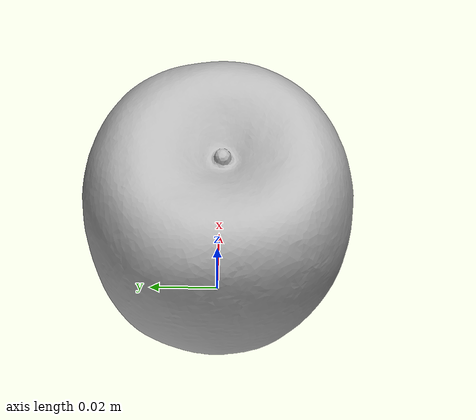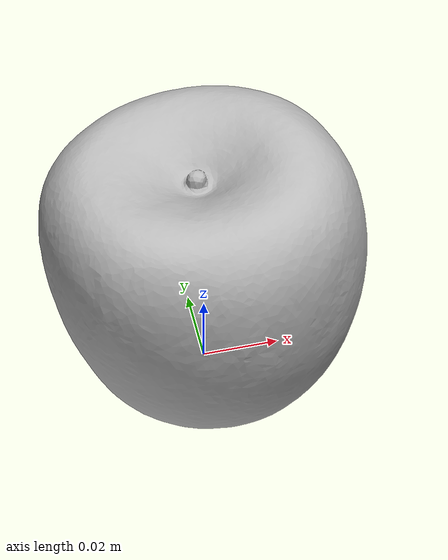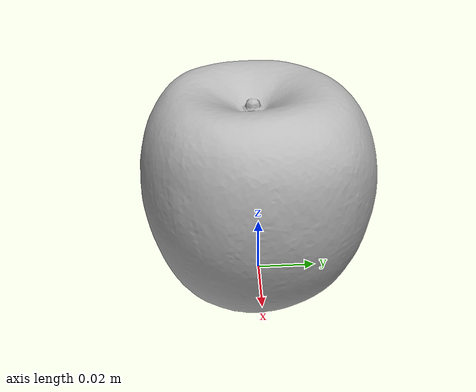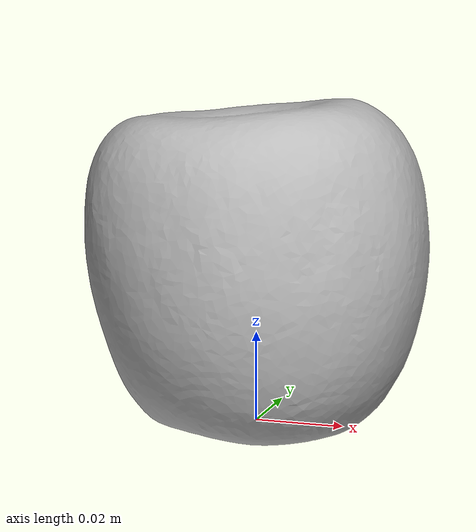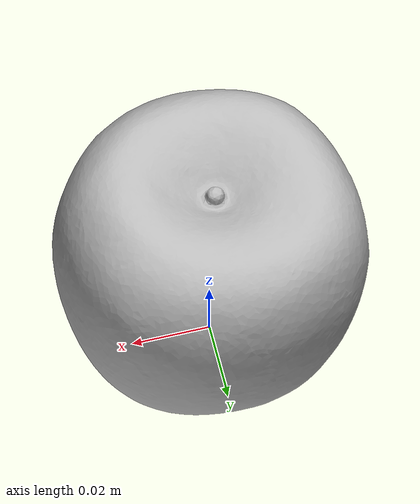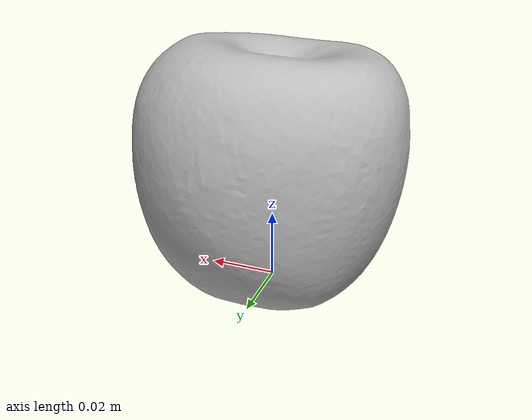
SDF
<?xml version='1.0'?>
<sdf version="1.4">
  <model name="apple">
    <pose>0 0 0  1.5708 0 0</pose>
    <static>0</static>
    <link name="body">
      <inertial>
          <mass>0.068</mass>
          <inertia>
            <ixx>0.000064</ixx>
            <ixy>0.000000</ixy>
            <ixz>0.000000</ixz>
            <iyy>0.000064</iyy>
            <iyz>0.000000</iyz>
            <izz>0.000064</izz>
          </inertia>
      </inertial>
      <collision name="collision">
        <geometry>
          <mesh>
		<uri>model://apple/meshes/apple.obj</uri>
		<scale>0.1 0.1 0.1</scale>
          </mesh>
        </geometry>
        <surface>
            <friction>
              <ode>
                <mu>80.0</mu>
                <mu2>100.0</mu2>
              </ode>
            </friction>
            <contact>
              <ode>
                <kp>1000000.0</kp>
                <kd>100.0</kd>
                <max_vel>0.0</max_vel>
                <min_depth>0.002</min_depth>
              </ode>
            </contact>
        </surface>
      </collision>
      <visual name="visual">
        <geometry>
          <mesh>
		<uri>model://apple/meshes/apple.obj</uri>
		<scale>0.1 0.1 0.1</scale>
          </mesh>
        </geometry>
      </visual>
      <velocity_decay>
        <linear>0.000000</linear>
        <angular>0.000000</angular>
      </velocity_decay>
      <self_collide>0</self_collide>
      <kinematic>0</kinematic>
      <gravity>1</gravity>
    </link>
  </model>
</sdf>
